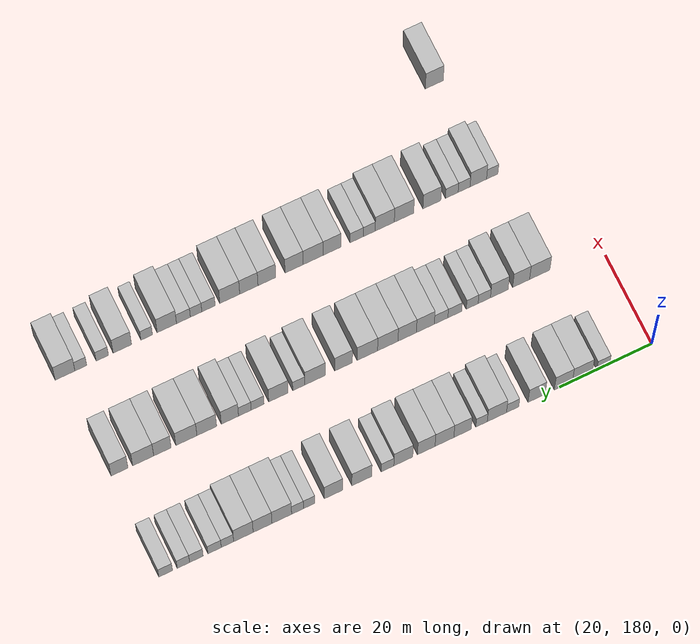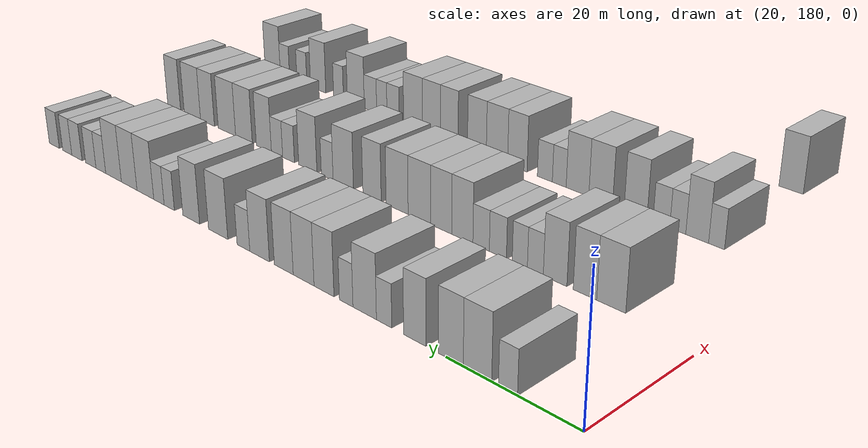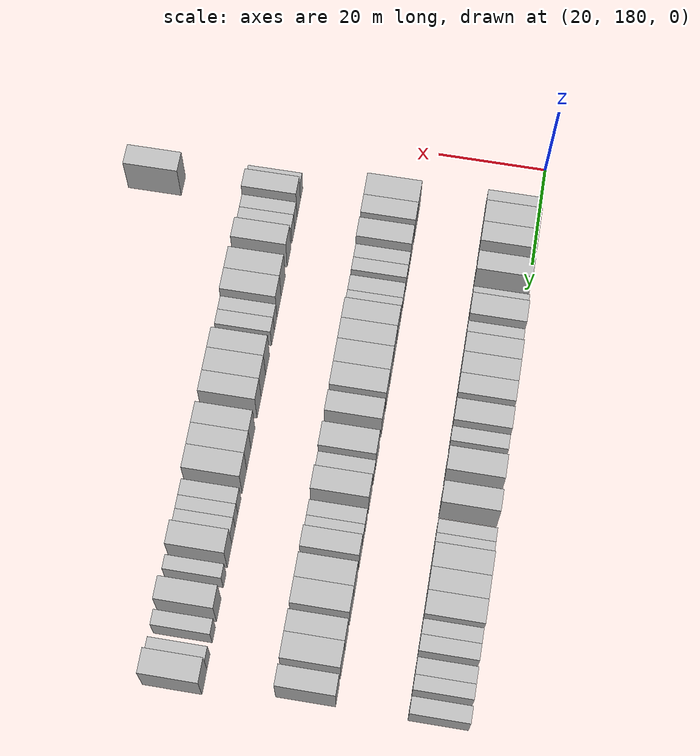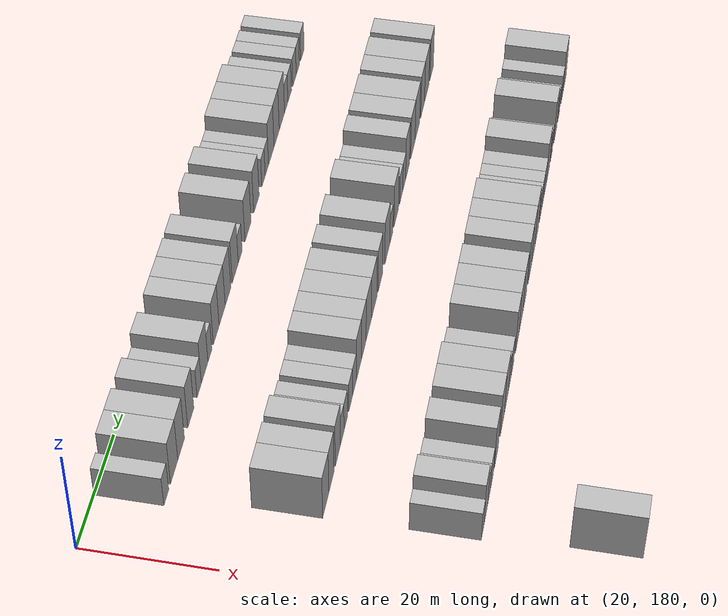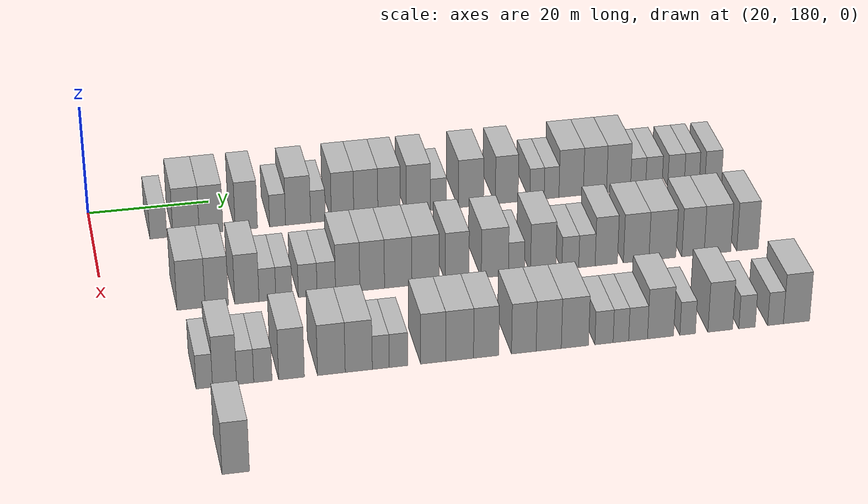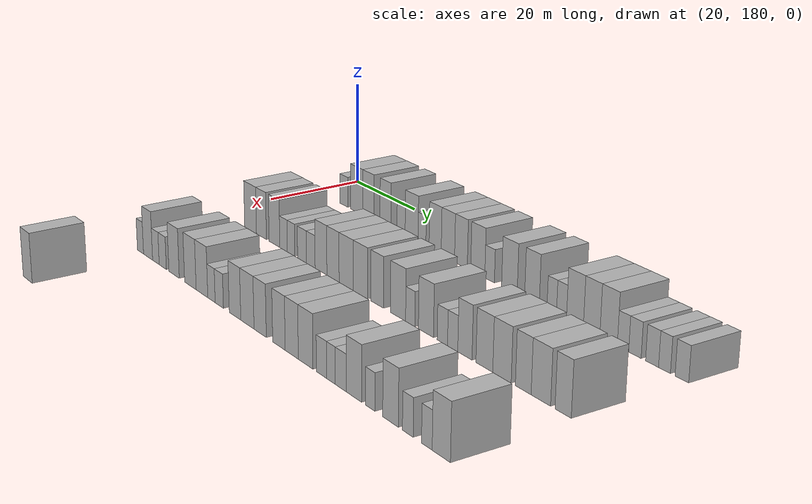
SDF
<sdf version="1.6">
 <world name="default">
  <model name="building_143">
   <static>1</static>
   <pose>25.0000 190.5858 0 0.000000 0.000000 0.000000</pose>
   <link name="link">
    <pose>0 0 3.00 0 0 0</pose>
    <collision name="collision"><geometry><box><size>10.0000 2.7740 6.0000</size></box></geometry></collision>
    <visual name="visual">
     <cast_shadows>0</cast_shadows>
     <geometry><box><size>10.0000 2.7740 6.0000</size></box></geometry>
     <material>
      <script>
       <uri>model://HANNAS_wall/materials/scripts</uri>
       <uri>model://HANNAS_wall/materials/textures</uri>
       <name>vrc/HANNAS_wall</name>
      </script>
     </material>
    </visual>
   </link>
  </model>
  <model name="building_144">
   <static>1</static>
   <pose>25.0000 195.1233 0 0.000000 0.000000 0.000000</pose>
   <link name="link">
    <pose>0 0 4.50 0 0 0</pose>
    <collision name="collision"><geometry><box><size>10.0000 4.3011 9.0000</size></box></geometry></collision>
    <visual name="visual">
     <cast_shadows>0</cast_shadows>
     <geometry><box><size>10.0000 4.3011 9.0000</size></box></geometry>
     <material>
      <script>
       <uri>model://HANNAS_wall/materials/scripts</uri>
       <uri>model://HANNAS_wall/materials/textures</uri>
       <name>vrc/HANNAS_wall</name>
      </script>
     </material>
    </visual>
   </link>
  </model>
  <model name="building_145">
   <static>1</static>
   <pose>25.0000 199.2311 0 0.000000 0.000000 0.000000</pose>
   <link name="link">
    <pose>0 0 4.50 0 0 0</pose>
    <collision name="collision"><geometry><box><size>10.0000 3.9144 9.0000</size></box></geometry></collision>
    <visual name="visual">
     <cast_shadows>0</cast_shadows>
     <geometry><box><size>10.0000 3.9144 9.0000</size></box></geometry>
     <material>
      <script>
       <uri>model://HANNAS_wall/materials/scripts</uri>
       <uri>model://HANNAS_wall/materials/textures</uri>
       <name>vrc/HANNAS_wall</name>
      </script>
     </material>
    </visual>
   </link>
  </model>
  <model name="building_146">
   <static>1</static>
   <pose>25.0000 205.0263 0 0.000000 0.000000 0.000000</pose>
   <link name="link">
    <pose>0 0 4.50 0 0 0</pose>
    <collision name="collision"><geometry><box><size>10.0000 3.6760 9.0000</size></box></geometry></collision>
    <visual name="visual">
     <cast_shadows>0</cast_shadows>
     <geometry><box><size>10.0000 3.6760 9.0000</size></box></geometry>
     <material>
      <script>
       <uri>model://HANNAS_wall/materials/scripts</uri>
       <uri>model://HANNAS_wall/materials/textures</uri>
       <name>vrc/HANNAS_wall</name>
      </script>
     </material>
    </visual>
   </link>
  </model>
  <model name="building_147">
   <static>1</static>
   <pose>25.0000 210.1840 0 0.000000 0.000000 0.000000</pose>
   <link name="link">
    <pose>0 0 3.00 0 0 0</pose>
    <collision name="collision"><geometry><box><size>10.0000 2.6396 6.0000</size></box></geometry></collision>
    <visual name="visual">
     <cast_shadows>0</cast_shadows>
     <geometry><box><size>10.0000 2.6396 6.0000</size></box></geometry>
     <material>
      <script>
       <uri>model://HANNAS_wall/materials/scripts</uri>
       <uri>model://HANNAS_wall/materials/textures</uri>
       <name>vrc/HANNAS_wall</name>
      </script>
     </material>
    </visual>
   </link>
  </model>
  <model name="building_148">
   <static>1</static>
   <pose>25.0000 213.5800 0 0.000000 0.000000 0.000000</pose>
   <link name="link">
    <pose>0 0 4.50 0 0 0</pose>
    <collision name="collision"><geometry><box><size>10.0000 4.1524 9.0000</size></box></geometry></collision>
    <visual name="visual">
     <cast_shadows>0</cast_shadows>
     <geometry><box><size>10.0000 4.1524 9.0000</size></box></geometry>
     <material>
      <script>
       <uri>model://HANNAS_wall/materials/scripts</uri>
       <uri>model://HANNAS_wall/materials/textures</uri>
       <name>vrc/HANNAS_wall</name>
      </script>
     </material>
    </visual>
   </link>
  </model>
  <model name="building_149">
   <static>1</static>
   <pose>25.0000 216.8875 0 0.000000 0.000000 0.000000</pose>
   <link name="link">
    <pose>0 0 3.00 0 0 0</pose>
    <collision name="collision"><geometry><box><size>10.0000 2.4626 6.0000</size></box></geometry></collision>
    <visual name="visual">
     <cast_shadows>0</cast_shadows>
     <geometry><box><size>10.0000 2.4626 6.0000</size></box></geometry>
     <material>
      <script>
       <uri>model://HANNAS_wall/materials/scripts</uri>
       <uri>model://HANNAS_wall/materials/textures</uri>
       <name>vrc/HANNAS_wall</name>
      </script>
     </material>
    </visual>
   </link>
  </model>
  <model name="building_150">
   <static>1</static>
   <pose>25.0000 220.9883 0 0.000000 0.000000 0.000000</pose>
   <link name="link">
    <pose>0 0 4.50 0 0 0</pose>
    <collision name="collision"><geometry><box><size>10.0000 3.7390 9.0000</size></box></geometry></collision>
    <visual name="visual">
     <cast_shadows>0</cast_shadows>
     <geometry><box><size>10.0000 3.7390 9.0000</size></box></geometry>
     <material>
      <script>
       <uri>model://HANNAS_wall/materials/scripts</uri>
       <uri>model://HANNAS_wall/materials/textures</uri>
       <name>vrc/HANNAS_wall</name>
      </script>
     </material>
    </visual>
   </link>
  </model>
  <model name="building_151">
   <static>1</static>
   <pose>25.0000 224.8739 0 0.000000 0.000000 0.000000</pose>
   <link name="link">
    <pose>0 0 4.50 0 0 0</pose>
    <collision name="collision"><geometry><box><size>10.0000 4.0323 9.0000</size></box></geometry></collision>
    <visual name="visual">
     <cast_shadows>0</cast_shadows>
     <geometry><box><size>10.0000 4.0323 9.0000</size></box></geometry>
     <material>
      <script>
       <uri>model://HANNAS_wall/materials/scripts</uri>
       <uri>model://HANNAS_wall/materials/textures</uri>
       <name>vrc/HANNAS_wall</name>
      </script>
     </material>
    </visual>
   </link>
  </model>
  <model name="building_152">
   <static>1</static>
   <pose>25.0000 228.7769 0 0.000000 0.000000 0.000000</pose>
   <link name="link">
    <pose>0 0 4.50 0 0 0</pose>
    <collision name="collision"><geometry><box><size>10.0000 3.7736 9.0000</size></box></geometry></collision>
    <visual name="visual">
     <cast_shadows>0</cast_shadows>
     <geometry><box><size>10.0000 3.7736 9.0000</size></box></geometry>
     <material>
      <script>
       <uri>model://HANNAS_wall/materials/scripts</uri>
       <uri>model://HANNAS_wall/materials/textures</uri>
       <name>vrc/HANNAS_wall</name>
      </script>
     </material>
    </visual>
   </link>
  </model>
  <model name="building_153">
   <static>1</static>
   <pose>25.0000 233.6946 0 0.000000 0.000000 0.000000</pose>
   <link name="link">
    <pose>0 0 4.50 0 0 0</pose>
    <collision name="collision"><geometry><box><size>10.0000 4.0619 9.0000</size></box></geometry></collision>
    <visual name="visual">
     <cast_shadows>0</cast_shadows>
     <geometry><box><size>10.0000 4.0619 9.0000</size></box></geometry>
     <material>
      <script>
       <uri>model://HANNAS_wall/materials/scripts</uri>
       <uri>model://HANNAS_wall/materials/textures</uri>
       <name>vrc/HANNAS_wall</name>
      </script>
     </material>
    </visual>
   </link>
  </model>
  <model name="building_154">
   <static>1</static>
   <pose>25.0000 237.0807 0 0.000000 0.000000 0.000000</pose>
   <link name="link">
    <pose>0 0 3.00 0 0 0</pose>
    <collision name="collision"><geometry><box><size>10.0000 2.7103 6.0000</size></box></geometry></collision>
    <visual name="visual">
     <cast_shadows>0</cast_shadows>
     <geometry><box><size>10.0000 2.7103 6.0000</size></box></geometry>
     <material>
      <script>
       <uri>model://HANNAS_wall/materials/scripts</uri>
       <uri>model://HANNAS_wall/materials/textures</uri>
       <name>vrc/HANNAS_wall</name>
      </script>
     </material>
    </visual>
   </link>
  </model>
  <model name="building_155">
   <static>1</static>
   <pose>25.0000 242.5707 0 0.000000 0.000000 0.000000</pose>
   <link name="link">
    <pose>0 0 4.50 0 0 0</pose>
    <collision name="collision"><geometry><box><size>10.0000 4.2698 9.0000</size></box></geometry></collision>
    <visual name="visual">
     <cast_shadows>0</cast_shadows>
     <geometry><box><size>10.0000 4.2698 9.0000</size></box></geometry>
     <material>
      <script>
       <uri>model://HANNAS_wall/materials/scripts</uri>
       <uri>model://HANNAS_wall/materials/textures</uri>
       <name>vrc/HANNAS_wall</name>
      </script>
     </material>
    </visual>
   </link>
  </model>
  <model name="building_156">
   <static>1</static>
   <pose>25.0000 248.6450 0 0.000000 0.000000 0.000000</pose>
   <link name="link">
    <pose>0 0 4.50 0 0 0</pose>
    <collision name="collision"><geometry><box><size>10.0000 3.8787 9.0000</size></box></geometry></collision>
    <visual name="visual">
     <cast_shadows>0</cast_shadows>
     <geometry><box><size>10.0000 3.8787 9.0000</size></box></geometry>
     <material>
      <script>
       <uri>model://HANNAS_wall/materials/scripts</uri>
       <uri>model://HANNAS_wall/materials/textures</uri>
       <name>vrc/HANNAS_wall</name>
      </script>
     </material>
    </visual>
   </link>
  </model>
  <model name="building_157">
   <static>1</static>
   <pose>25.0000 253.8087 0 0.000000 0.000000 0.000000</pose>
   <link name="link">
    <pose>0 0 3.00 0 0 0</pose>
    <collision name="collision"><geometry><box><size>10.0000 2.4486 6.0000</size></box></geometry></collision>
    <visual name="visual">
     <cast_shadows>0</cast_shadows>
     <geometry><box><size>10.0000 2.4486 6.0000</size></box></geometry>
     <material>
      <script>
       <uri>model://HANNAS_wall/materials/scripts</uri>
       <uri>model://HANNAS_wall/materials/textures</uri>
       <name>vrc/HANNAS_wall</name>
      </script>
     </material>
    </visual>
   </link>
  </model>
  <model name="building_158">
   <static>1</static>
   <pose>25.0000 256.2967 0 0.000000 0.000000 0.000000</pose>
   <link name="link">
    <pose>0 0 3.00 0 0 0</pose>
    <collision name="collision"><geometry><box><size>10.0000 2.5276 6.0000</size></box></geometry></collision>
    <visual name="visual">
     <cast_shadows>0</cast_shadows>
     <geometry><box><size>10.0000 2.5276 6.0000</size></box></geometry>
     <material>
      <script>
       <uri>model://HANNAS_wall/materials/scripts</uri>
       <uri>model://HANNAS_wall/materials/textures</uri>
       <name>vrc/HANNAS_wall</name>
      </script>
     </material>
    </visual>
   </link>
  </model>
  <model name="building_159">
   <static>1</static>
   <pose>25.0000 259.6534 0 0.000000 0.000000 0.000000</pose>
   <link name="link">
    <pose>0 0 4.50 0 0 0</pose>
    <collision name="collision"><geometry><box><size>10.0000 4.1857 9.0000</size></box></geometry></collision>
    <visual name="visual">
     <cast_shadows>0</cast_shadows>
     <geometry><box><size>10.0000 4.1857 9.0000</size></box></geometry>
     <material>
      <script>
       <uri>model://HANNAS_wall/materials/scripts</uri>
       <uri>model://HANNAS_wall/materials/textures</uri>
       <name>vrc/HANNAS_wall</name>
      </script>
     </material>
    </visual>
   </link>
  </model>
  <model name="building_160">
   <static>1</static>
   <pose>25.0000 263.7451 0 0.000000 0.000000 0.000000</pose>
   <link name="link">
    <pose>0 0 4.50 0 0 0</pose>
    <collision name="collision"><geometry><box><size>10.0000 3.9977 9.0000</size></box></geometry></collision>
    <visual name="visual">
     <cast_shadows>0</cast_shadows>
     <geometry><box><size>10.0000 3.9977 9.0000</size></box></geometry>
     <material>
      <script>
       <uri>model://HANNAS_wall/materials/scripts</uri>
       <uri>model://HANNAS_wall/materials/textures</uri>
       <name>vrc/HANNAS_wall</name>
      </script>
     </material>
    </visual>
   </link>
  </model>
  <model name="building_161">
   <static>1</static>
   <pose>25.0000 267.8099 0 0.000000 0.000000 0.000000</pose>
   <link name="link">
    <pose>0 0 4.50 0 0 0</pose>
    <collision name="collision"><geometry><box><size>10.0000 4.1320 9.0000</size></box></geometry></collision>
    <visual name="visual">
     <cast_shadows>0</cast_shadows>
     <geometry><box><size>10.0000 4.1320 9.0000</size></box></geometry>
     <material>
      <script>
       <uri>model://HANNAS_wall/materials/scripts</uri>
       <uri>model://HANNAS_wall/materials/textures</uri>
       <name>vrc/HANNAS_wall</name>
      </script>
     </material>
    </visual>
   </link>
  </model>
  <model name="building_162">
   <static>1</static>
   <pose>25.0000 271.1908 0 0.000000 0.000000 0.000000</pose>
   <link name="link">
    <pose>0 0 3.00 0 0 0</pose>
    <collision name="collision"><geometry><box><size>10.0000 2.6298 6.0000</size></box></geometry></collision>
    <visual name="visual">
     <cast_shadows>0</cast_shadows>
     <geometry><box><size>10.0000 2.6298 6.0000</size></box></geometry>
     <material>
      <script>
       <uri>model://HANNAS_wall/materials/scripts</uri>
       <uri>model://HANNAS_wall/materials/textures</uri>
       <name>vrc/HANNAS_wall</name>
      </script>
     </material>
    </visual>
   </link>
  </model>
  <model name="building_163">
   <static>1</static>
   <pose>25.0000 273.9237 0 0.000000 0.000000 0.000000</pose>
   <link name="link">
    <pose>0 0 3.00 0 0 0</pose>
    <collision name="collision"><geometry><box><size>10.0000 2.8360 6.0000</size></box></geometry></collision>
    <visual name="visual">
     <cast_shadows>0</cast_shadows>
     <geometry><box><size>10.0000 2.8360 6.0000</size></box></geometry>
     <material>
      <script>
       <uri>model://HANNAS_wall/materials/scripts</uri>
       <uri>model://HANNAS_wall/materials/textures</uri>
       <name>vrc/HANNAS_wall</name>
      </script>
     </material>
    </visual>
   </link>
  </model>
  <model name="building_164">
   <static>1</static>
   <pose>25.0000 277.7795 0 0.000000 0.000000 0.000000</pose>
   <link name="link">
    <pose>0 0 3.00 0 0 0</pose>
    <collision name="collision"><geometry><box><size>10.0000 2.8758 6.0000</size></box></geometry></collision>
    <visual name="visual">
     <cast_shadows>0</cast_shadows>
     <geometry><box><size>10.0000 2.8758 6.0000</size></box></geometry>
     <material>
      <script>
       <uri>model://HANNAS_wall/materials/scripts</uri>
       <uri>model://HANNAS_wall/materials/textures</uri>
       <name>vrc/HANNAS_wall</name>
      </script>
     </material>
    </visual>
   </link>
  </model>
  <model name="building_165">
   <static>1</static>
   <pose>25.0000 280.5183 0 0.000000 0.000000 0.000000</pose>
   <link name="link">
    <pose>0 0 3.00 0 0 0</pose>
    <collision name="collision"><geometry><box><size>10.0000 2.6018 6.0000</size></box></geometry></collision>
    <visual name="visual">
     <cast_shadows>0</cast_shadows>
     <geometry><box><size>10.0000 2.6018 6.0000</size></box></geometry>
     <material>
      <script>
       <uri>model://HANNAS_wall/materials/scripts</uri>
       <uri>model://HANNAS_wall/materials/textures</uri>
       <name>vrc/HANNAS_wall</name>
      </script>
     </material>
    </visual>
   </link>
  </model>
  <model name="building_166">
   <static>1</static>
   <pose>25.0000 284.2725 0 0.000000 0.000000 0.000000</pose>
   <link name="link">
    <pose>0 0 3.00 0 0 0</pose>
    <collision name="collision"><geometry><box><size>10.0000 2.9067 6.0000</size></box></geometry></collision>
    <visual name="visual">
     <cast_shadows>0</cast_shadows>
     <geometry><box><size>10.0000 2.9067 6.0000</size></box></geometry>
     <material>
      <script>
       <uri>model://HANNAS_wall/materials/scripts</uri>
       <uri>model://HANNAS_wall/materials/textures</uri>
       <name>vrc/HANNAS_wall</name>
      </script>
     </material>
    </visual>
   </link>
  </model>
  <model name="building_337">
   <static>1</static>
   <pose>47.0000 193.3059 0 0.000000 0.000000 0.000000</pose>
   <link name="link">
    <pose>0 0 4.50 0 0 0</pose>
    <collision name="collision"><geometry><box><size>10.0000 4.4150 9.0000</size></box></geometry></collision>
    <visual name="visual">
     <cast_shadows>0</cast_shadows>
     <geometry><box><size>10.0000 4.4150 9.0000</size></box></geometry>
     <material>
      <script>
       <uri>model://HANNAS_wall/materials/scripts</uri>
       <uri>model://HANNAS_wall/materials/textures</uri>
       <name>vrc/HANNAS_wall</name>
      </script>
     </material>
    </visual>
   </link>
  </model>
  <model name="building_338">
   <static>1</static>
   <pose>47.0000 197.3515 0 0.000000 0.000000 0.000000</pose>
   <link name="link">
    <pose>0 0 4.50 0 0 0</pose>
    <collision name="collision"><geometry><box><size>10.0000 3.6763 9.0000</size></box></geometry></collision>
    <visual name="visual">
     <cast_shadows>0</cast_shadows>
     <geometry><box><size>10.0000 3.6763 9.0000</size></box></geometry>
     <material>
      <script>
       <uri>model://HANNAS_wall/materials/scripts</uri>
       <uri>model://HANNAS_wall/materials/textures</uri>
       <name>vrc/HANNAS_wall</name>
      </script>
     </material>
    </visual>
   </link>
  </model>
  <model name="building_339">
   <static>1</static>
   <pose>47.0000 202.1078 0 0.000000 0.000000 0.000000</pose>
   <link name="link">
    <pose>0 0 4.50 0 0 0</pose>
    <collision name="collision"><geometry><box><size>10.0000 3.8362 9.0000</size></box></geometry></collision>
    <visual name="visual">
     <cast_shadows>0</cast_shadows>
     <geometry><box><size>10.0000 3.8362 9.0000</size></box></geometry>
     <material>
      <script>
       <uri>model://HANNAS_wall/materials/scripts</uri>
       <uri>model://HANNAS_wall/materials/textures</uri>
       <name>vrc/HANNAS_wall</name>
      </script>
     </material>
    </visual>
   </link>
  </model>
  <model name="building_340">
   <static>1</static>
   <pose>47.0000 205.3581 0 0.000000 0.000000 0.000000</pose>
   <link name="link">
    <pose>0 0 3.00 0 0 0</pose>
    <collision name="collision"><geometry><box><size>10.0000 2.6645 6.0000</size></box></geometry></collision>
    <visual name="visual">
     <cast_shadows>0</cast_shadows>
     <geometry><box><size>10.0000 2.6645 6.0000</size></box></geometry>
     <material>
      <script>
       <uri>model://HANNAS_wall/materials/scripts</uri>
       <uri>model://HANNAS_wall/materials/textures</uri>
       <name>vrc/HANNAS_wall</name>
      </script>
     </material>
    </visual>
   </link>
  </model>
  <model name="building_341">
   <static>1</static>
   <pose>47.0000 207.9774 0 0.000000 0.000000 0.000000</pose>
   <link name="link">
    <pose>0 0 3.00 0 0 0</pose>
    <collision name="collision"><geometry><box><size>10.0000 2.5740 6.0000</size></box></geometry></collision>
    <visual name="visual">
     <cast_shadows>0</cast_shadows>
     <geometry><box><size>10.0000 2.5740 6.0000</size></box></geometry>
     <material>
      <script>
       <uri>model://HANNAS_wall/materials/scripts</uri>
       <uri>model://HANNAS_wall/materials/textures</uri>
       <name>vrc/HANNAS_wall</name>
      </script>
     </material>
    </visual>
   </link>
  </model>
  <model name="building_342">
   <static>1</static>
   <pose>47.0000 211.7571 0 0.000000 0.000000 0.000000</pose>
   <link name="link">
    <pose>0 0 3.00 0 0 0</pose>
    <collision name="collision"><geometry><box><size>10.0000 2.9855 6.0000</size></box></geometry></collision>
    <visual name="visual">
     <cast_shadows>0</cast_shadows>
     <geometry><box><size>10.0000 2.9855 6.0000</size></box></geometry>
     <material>
      <script>
       <uri>model://HANNAS_wall/materials/scripts</uri>
       <uri>model://HANNAS_wall/materials/textures</uri>
       <name>vrc/HANNAS_wall</name>
      </script>
     </material>
    </visual>
   </link>
  </model>
  <model name="building_343">
   <static>1</static>
   <pose>47.0000 214.7203 0 0.000000 0.000000 0.000000</pose>
   <link name="link">
    <pose>0 0 3.00 0 0 0</pose>
    <collision name="collision"><geometry><box><size>10.0000 2.9408 6.0000</size></box></geometry></collision>
    <visual name="visual">
     <cast_shadows>0</cast_shadows>
     <geometry><box><size>10.0000 2.9408 6.0000</size></box></geometry>
     <material>
      <script>
       <uri>model://HANNAS_wall/materials/scripts</uri>
       <uri>model://HANNAS_wall/materials/textures</uri>
       <name>vrc/HANNAS_wall</name>
      </script>
     </material>
    </visual>
   </link>
  </model>
  <model name="building_344">
   <static>1</static>
   <pose>47.0000 218.1339 0 0.000000 0.000000 0.000000</pose>
   <link name="link">
    <pose>0 0 4.50 0 0 0</pose>
    <collision name="collision"><geometry><box><size>10.0000 3.8865 9.0000</size></box></geometry></collision>
    <visual name="visual">
     <cast_shadows>0</cast_shadows>
     <geometry><box><size>10.0000 3.8865 9.0000</size></box></geometry>
     <material>
      <script>
       <uri>model://HANNAS_wall/materials/scripts</uri>
       <uri>model://HANNAS_wall/materials/textures</uri>
       <name>vrc/HANNAS_wall</name>
      </script>
     </material>
    </visual>
   </link>
  </model>
  <model name="building_345">
   <static>1</static>
   <pose>47.0000 222.0532 0 0.000000 0.000000 0.000000</pose>
   <link name="link">
    <pose>0 0 4.50 0 0 0</pose>
    <collision name="collision"><geometry><box><size>10.0000 3.9520 9.0000</size></box></geometry></collision>
    <visual name="visual">
     <cast_shadows>0</cast_shadows>
     <geometry><box><size>10.0000 3.9520 9.0000</size></box></geometry>
     <material>
      <script>
       <uri>model://HANNAS_wall/materials/scripts</uri>
       <uri>model://HANNAS_wall/materials/textures</uri>
       <name>vrc/HANNAS_wall</name>
      </script>
     </material>
    </visual>
   </link>
  </model>
  <model name="building_346">
   <static>1</static>
   <pose>47.0000 226.2380 0 0.000000 0.000000 0.000000</pose>
   <link name="link">
    <pose>0 0 4.50 0 0 0</pose>
    <collision name="collision"><geometry><box><size>10.0000 4.4175 9.0000</size></box></geometry></collision>
    <visual name="visual">
     <cast_shadows>0</cast_shadows>
     <geometry><box><size>10.0000 4.4175 9.0000</size></box></geometry>
     <material>
      <script>
       <uri>model://HANNAS_wall/materials/scripts</uri>
       <uri>model://HANNAS_wall/materials/textures</uri>
       <name>vrc/HANNAS_wall</name>
      </script>
     </material>
    </visual>
   </link>
  </model>
  <model name="building_347">
   <static>1</static>
   <pose>47.0000 230.6537 0 0.000000 0.000000 0.000000</pose>
   <link name="link">
    <pose>0 0 4.50 0 0 0</pose>
    <collision name="collision"><geometry><box><size>10.0000 4.4138 9.0000</size></box></geometry></collision>
    <visual name="visual">
     <cast_shadows>0</cast_shadows>
     <geometry><box><size>10.0000 4.4138 9.0000</size></box></geometry>
     <material>
      <script>
       <uri>model://HANNAS_wall/materials/scripts</uri>
       <uri>model://HANNAS_wall/materials/textures</uri>
       <name>vrc/HANNAS_wall</name>
      </script>
     </material>
    </visual>
   </link>
  </model>
  <model name="building_348">
   <static>1</static>
   <pose>47.0000 235.7656 0 0.000000 0.000000 0.000000</pose>
   <link name="link">
    <pose>0 0 4.50 0 0 0</pose>
    <collision name="collision"><geometry><box><size>10.0000 3.8101 9.0000</size></box></geometry></collision>
    <visual name="visual">
     <cast_shadows>0</cast_shadows>
     <geometry><box><size>10.0000 3.8101 9.0000</size></box></geometry>
     <material>
      <script>
       <uri>model://HANNAS_wall/materials/scripts</uri>
       <uri>model://HANNAS_wall/materials/textures</uri>
       <name>vrc/HANNAS_wall</name>
      </script>
     </material>
    </visual>
   </link>
  </model>
  <model name="building_349">
   <static>1</static>
   <pose>47.0000 241.8759 0 0.000000 0.000000 0.000000</pose>
   <link name="link">
    <pose>0 0 4.50 0 0 0</pose>
    <collision name="collision"><geometry><box><size>10.0000 4.4104 9.0000</size></box></geometry></collision>
    <visual name="visual">
     <cast_shadows>0</cast_shadows>
     <geometry><box><size>10.0000 4.4104 9.0000</size></box></geometry>
     <material>
      <script>
       <uri>model://HANNAS_wall/materials/scripts</uri>
       <uri>model://HANNAS_wall/materials/textures</uri>
       <name>vrc/HANNAS_wall</name>
      </script>
     </material>
    </visual>
   </link>
  </model>
  <model name="building_350">
   <static>1</static>
   <pose>47.0000 245.3846 0 0.000000 0.000000 0.000000</pose>
   <link name="link">
    <pose>0 0 3.00 0 0 0</pose>
    <collision name="collision"><geometry><box><size>10.0000 2.6071 6.0000</size></box></geometry></collision>
    <visual name="visual">
     <cast_shadows>0</cast_shadows>
     <geometry><box><size>10.0000 2.6071 6.0000</size></box></geometry>
     <material>
      <script>
       <uri>model://HANNAS_wall/materials/scripts</uri>
       <uri>model://HANNAS_wall/materials/textures</uri>
       <name>vrc/HANNAS_wall</name>
      </script>
     </material>
    </visual>
   </link>
  </model>
  <model name="building_351">
   <static>1</static>
   <pose>47.0000 249.7638 0 0.000000 0.000000 0.000000</pose>
   <link name="link">
    <pose>0 0 4.50 0 0 0</pose>
    <collision name="collision"><geometry><box><size>10.0000 4.1513 9.0000</size></box></geometry></collision>
    <visual name="visual">
     <cast_shadows>0</cast_shadows>
     <geometry><box><size>10.0000 4.1513 9.0000</size></box></geometry>
     <material>
      <script>
       <uri>model://HANNAS_wall/materials/scripts</uri>
       <uri>model://HANNAS_wall/materials/textures</uri>
       <name>vrc/HANNAS_wall</name>
      </script>
     </material>
    </visual>
   </link>
  </model>
  <model name="building_352">
   <static>1</static>
   <pose>47.0000 254.2254 0 0.000000 0.000000 0.000000</pose>
   <link name="link">
    <pose>0 0 3.00 0 0 0</pose>
    <collision name="collision"><geometry><box><size>10.0000 2.7718 6.0000</size></box></geometry></collision>
    <visual name="visual">
     <cast_shadows>0</cast_shadows>
     <geometry><box><size>10.0000 2.7718 6.0000</size></box></geometry>
     <material>
      <script>
       <uri>model://HANNAS_wall/materials/scripts</uri>
       <uri>model://HANNAS_wall/materials/textures</uri>
       <name>vrc/HANNAS_wall</name>
      </script>
     </material>
    </visual>
   </link>
  </model>
  <model name="building_353">
   <static>1</static>
   <pose>47.0000 256.9596 0 0.000000 0.000000 0.000000</pose>
   <link name="link">
    <pose>0 0 3.00 0 0 0</pose>
    <collision name="collision"><geometry><box><size>10.0000 2.6966 6.0000</size></box></geometry></collision>
    <visual name="visual">
     <cast_shadows>0</cast_shadows>
     <geometry><box><size>10.0000 2.6966 6.0000</size></box></geometry>
     <material>
      <script>
       <uri>model://HANNAS_wall/materials/scripts</uri>
       <uri>model://HANNAS_wall/materials/textures</uri>
       <name>vrc/HANNAS_wall</name>
      </script>
     </material>
    </visual>
   </link>
  </model>
  <model name="building_354">
   <static>1</static>
   <pose>47.0000 260.1494 0 0.000000 0.000000 0.000000</pose>
   <link name="link">
    <pose>0 0 4.50 0 0 0</pose>
    <collision name="collision"><geometry><box><size>10.0000 3.6830 9.0000</size></box></geometry></collision>
    <visual name="visual">
     <cast_shadows>0</cast_shadows>
     <geometry><box><size>10.0000 3.6830 9.0000</size></box></geometry>
     <material>
      <script>
       <uri>model://HANNAS_wall/materials/scripts</uri>
       <uri>model://HANNAS_wall/materials/textures</uri>
       <name>vrc/HANNAS_wall</name>
      </script>
     </material>
    </visual>
   </link>
  </model>
  <model name="building_355">
   <static>1</static>
   <pose>47.0000 265.0983 0 0.000000 0.000000 0.000000</pose>
   <link name="link">
    <pose>0 0 4.50 0 0 0</pose>
    <collision name="collision"><geometry><box><size>10.0000 4.2149 9.0000</size></box></geometry></collision>
    <visual name="visual">
     <cast_shadows>0</cast_shadows>
     <geometry><box><size>10.0000 4.2149 9.0000</size></box></geometry>
     <material>
      <script>
       <uri>model://HANNAS_wall/materials/scripts</uri>
       <uri>model://HANNAS_wall/materials/textures</uri>
       <name>vrc/HANNAS_wall</name>
      </script>
     </material>
    </visual>
   </link>
  </model>
  <model name="building_356">
   <static>1</static>
   <pose>47.0000 269.4494 0 0.000000 0.000000 0.000000</pose>
   <link name="link">
    <pose>0 0 4.50 0 0 0</pose>
    <collision name="collision"><geometry><box><size>10.0000 4.4873 9.0000</size></box></geometry></collision>
    <visual name="visual">
     <cast_shadows>0</cast_shadows>
     <geometry><box><size>10.0000 4.4873 9.0000</size></box></geometry>
     <material>
      <script>
       <uri>model://HANNAS_wall/materials/scripts</uri>
       <uri>model://HANNAS_wall/materials/textures</uri>
       <name>vrc/HANNAS_wall</name>
      </script>
     </material>
    </visual>
   </link>
  </model>
  <model name="building_357">
   <static>1</static>
   <pose>47.0000 274.5521 0 0.000000 0.000000 0.000000</pose>
   <link name="link">
    <pose>0 0 4.50 0 0 0</pose>
    <collision name="collision"><geometry><box><size>10.0000 3.7181 9.0000</size></box></geometry></collision>
    <visual name="visual">
     <cast_shadows>0</cast_shadows>
     <geometry><box><size>10.0000 3.7181 9.0000</size></box></geometry>
     <material>
      <script>
       <uri>model://HANNAS_wall/materials/scripts</uri>
       <uri>model://HANNAS_wall/materials/textures</uri>
       <name>vrc/HANNAS_wall</name>
      </script>
     </material>
    </visual>
   </link>
  </model>
  <model name="building_358">
   <static>1</static>
   <pose>47.0000 278.6449 0 0.000000 0.000000 0.000000</pose>
   <link name="link">
    <pose>0 0 4.50 0 0 0</pose>
    <collision name="collision"><geometry><box><size>10.0000 4.4676 9.0000</size></box></geometry></collision>
    <visual name="visual">
     <cast_shadows>0</cast_shadows>
     <geometry><box><size>10.0000 4.4676 9.0000</size></box></geometry>
     <material>
      <script>
       <uri>model://HANNAS_wall/materials/scripts</uri>
       <uri>model://HANNAS_wall/materials/textures</uri>
       <name>vrc/HANNAS_wall</name>
      </script>
     </material>
    </visual>
   </link>
  </model>
  <model name="building_359">
   <static>1</static>
   <pose>47.0000 283.6819 0 0.000000 0.000000 0.000000</pose>
   <link name="link">
    <pose>0 0 4.50 0 0 0</pose>
    <collision name="collision"><geometry><box><size>10.0000 3.6064 9.0000</size></box></geometry></collision>
    <visual name="visual">
     <cast_shadows>0</cast_shadows>
     <geometry><box><size>10.0000 3.6064 9.0000</size></box></geometry>
     <material>
      <script>
       <uri>model://HANNAS_wall/materials/scripts</uri>
       <uri>model://HANNAS_wall/materials/textures</uri>
       <name>vrc/HANNAS_wall</name>
      </script>
     </material>
    </visual>
   </link>
  </model>
  <model name="building_530">
   <static>1</static>
   <pose>69.0000 192.6755 0 0.000000 0.000000 0.000000</pose>
   <link name="link">
    <pose>0 0 3.00 0 0 0</pose>
    <collision name="collision"><geometry><box><size>10.0000 2.4789 6.0000</size></box></geometry></collision>
    <visual name="visual">
     <cast_shadows>0</cast_shadows>
     <geometry><box><size>10.0000 2.4789 6.0000</size></box></geometry>
     <material>
      <script>
       <uri>model://HANNAS_wall/materials/scripts</uri>
       <uri>model://HANNAS_wall/materials/textures</uri>
       <name>vrc/HANNAS_wall</name>
      </script>
     </material>
    </visual>
   </link>
  </model>
  <model name="building_531">
   <static>1</static>
   <pose>69.0000 195.7253 0 0.000000 0.000000 0.000000</pose>
   <link name="link">
    <pose>0 0 4.50 0 0 0</pose>
    <collision name="collision"><geometry><box><size>10.0000 3.6208 9.0000</size></box></geometry></collision>
    <visual name="visual">
     <cast_shadows>0</cast_shadows>
     <geometry><box><size>10.0000 3.6208 9.0000</size></box></geometry>
     <material>
      <script>
       <uri>model://HANNAS_wall/materials/scripts</uri>
       <uri>model://HANNAS_wall/materials/textures</uri>
       <name>vrc/HANNAS_wall</name>
      </script>
     </material>
    </visual>
   </link>
  </model>
  <model name="building_532">
   <static>1</static>
   <pose>69.0000 198.8332 0 0.000000 0.000000 0.000000</pose>
   <link name="link">
    <pose>0 0 3.00 0 0 0</pose>
    <collision name="collision"><geometry><box><size>10.0000 2.5949 6.0000</size></box></geometry></collision>
    <visual name="visual">
     <cast_shadows>0</cast_shadows>
     <geometry><box><size>10.0000 2.5949 6.0000</size></box></geometry>
     <material>
      <script>
       <uri>model://HANNAS_wall/materials/scripts</uri>
       <uri>model://HANNAS_wall/materials/textures</uri>
       <name>vrc/HANNAS_wall</name>
      </script>
     </material>
    </visual>
   </link>
  </model>
  <model name="building_533">
   <static>1</static>
   <pose>69.0000 201.5175 0 0.000000 0.000000 0.000000</pose>
   <link name="link">
    <pose>0 0 3.00 0 0 0</pose>
    <collision name="collision"><geometry><box><size>10.0000 2.7739 6.0000</size></box></geometry></collision>
    <visual name="visual">
     <cast_shadows>0</cast_shadows>
     <geometry><box><size>10.0000 2.7739 6.0000</size></box></geometry>
     <material>
      <script>
       <uri>model://HANNAS_wall/materials/scripts</uri>
       <uri>model://HANNAS_wall/materials/textures</uri>
       <name>vrc/HANNAS_wall</name>
      </script>
     </material>
    </visual>
   </link>
  </model>
  <model name="building_534">
   <static>1</static>
   <pose>69.0000 205.8608 0 0.000000 0.000000 0.000000</pose>
   <link name="link">
    <pose>0 0 4.50 0 0 0</pose>
    <collision name="collision"><geometry><box><size>10.0000 3.9127 9.0000</size></box></geometry></collision>
    <visual name="visual">
     <cast_shadows>0</cast_shadows>
     <geometry><box><size>10.0000 3.9127 9.0000</size></box></geometry>
     <material>
      <script>
       <uri>model://HANNAS_wall/materials/scripts</uri>
       <uri>model://HANNAS_wall/materials/textures</uri>
       <name>vrc/HANNAS_wall</name>
      </script>
     </material>
    </visual>
   </link>
  </model>
  <model name="building_535">
   <static>1</static>
   <pose>69.0000 211.9300 0 0.000000 0.000000 0.000000</pose>
   <link name="link">
    <pose>0 0 4.50 0 0 0</pose>
    <collision name="collision"><geometry><box><size>10.0000 4.2257 9.0000</size></box></geometry></collision>
    <visual name="visual">
     <cast_shadows>0</cast_shadows>
     <geometry><box><size>10.0000 4.2257 9.0000</size></box></geometry>
     <material>
      <script>
       <uri>model://HANNAS_wall/materials/scripts</uri>
       <uri>model://HANNAS_wall/materials/textures</uri>
       <name>vrc/HANNAS_wall</name>
      </script>
     </material>
    </visual>
   </link>
  </model>
  <model name="building_536">
   <static>1</static>
   <pose>69.0000 216.1169 0 0.000000 0.000000 0.000000</pose>
   <link name="link">
    <pose>0 0 4.50 0 0 0</pose>
    <collision name="collision"><geometry><box><size>10.0000 4.1482 9.0000</size></box></geometry></collision>
    <visual name="visual">
     <cast_shadows>0</cast_shadows>
     <geometry><box><size>10.0000 4.1482 9.0000</size></box></geometry>
     <material>
      <script>
       <uri>model://HANNAS_wall/materials/scripts</uri>
       <uri>model://HANNAS_wall/materials/textures</uri>
       <name>vrc/HANNAS_wall</name>
      </script>
     </material>
    </visual>
   </link>
  </model>
  <model name="building_537">
   <static>1</static>
   <pose>69.0000 219.4867 0 0.000000 0.000000 0.000000</pose>
   <link name="link">
    <pose>0 0 3.00 0 0 0</pose>
    <collision name="collision"><geometry><box><size>10.0000 2.5914 6.0000</size></box></geometry></collision>
    <visual name="visual">
     <cast_shadows>0</cast_shadows>
     <geometry><box><size>10.0000 2.5914 6.0000</size></box></geometry>
     <material>
      <script>
       <uri>model://HANNAS_wall/materials/scripts</uri>
       <uri>model://HANNAS_wall/materials/textures</uri>
       <name>vrc/HANNAS_wall</name>
      </script>
     </material>
    </visual>
   </link>
  </model>
  <model name="building_538">
   <static>1</static>
   <pose>69.0000 222.2106 0 0.000000 0.000000 0.000000</pose>
   <link name="link">
    <pose>0 0 3.00 0 0 0</pose>
    <collision name="collision"><geometry><box><size>10.0000 2.8562 6.0000</size></box></geometry></collision>
    <visual name="visual">
     <cast_shadows>0</cast_shadows>
     <geometry><box><size>10.0000 2.8562 6.0000</size></box></geometry>
     <material>
      <script>
       <uri>model://HANNAS_wall/materials/scripts</uri>
       <uri>model://HANNAS_wall/materials/textures</uri>
       <name>vrc/HANNAS_wall</name>
      </script>
     </material>
    </visual>
   </link>
  </model>
  <model name="building_539">
   <static>1</static>
   <pose>69.0000 227.5652 0 0.000000 0.000000 0.000000</pose>
   <link name="link">
    <pose>0 0 4.50 0 0 0</pose>
    <collision name="collision"><geometry><box><size>10.0000 3.8531 9.0000</size></box></geometry></collision>
    <visual name="visual">
     <cast_shadows>0</cast_shadows>
     <geometry><box><size>10.0000 3.8531 9.0000</size></box></geometry>
     <material>
      <script>
       <uri>model://HANNAS_wall/materials/scripts</uri>
       <uri>model://HANNAS_wall/materials/textures</uri>
       <name>vrc/HANNAS_wall</name>
      </script>
     </material>
    </visual>
   </link>
  </model>
  <model name="building_540">
   <static>1</static>
   <pose>69.0000 231.6552 0 0.000000 0.000000 0.000000</pose>
   <link name="link">
    <pose>0 0 4.50 0 0 0</pose>
    <collision name="collision"><geometry><box><size>10.0000 4.3268 9.0000</size></box></geometry></collision>
    <visual name="visual">
     <cast_shadows>0</cast_shadows>
     <geometry><box><size>10.0000 4.3268 9.0000</size></box></geometry>
     <material>
      <script>
       <uri>model://HANNAS_wall/materials/scripts</uri>
       <uri>model://HANNAS_wall/materials/textures</uri>
       <name>vrc/HANNAS_wall</name>
      </script>
     </material>
    </visual>
   </link>
  </model>
  <model name="building_541">
   <static>1</static>
   <pose>69.0000 235.7743 0 0.000000 0.000000 0.000000</pose>
   <link name="link">
    <pose>0 0 4.50 0 0 0</pose>
    <collision name="collision"><geometry><box><size>10.0000 3.9115 9.0000</size></box></geometry></collision>
    <visual name="visual">
     <cast_shadows>0</cast_shadows>
     <geometry><box><size>10.0000 3.9115 9.0000</size></box></geometry>
     <material>
      <script>
       <uri>model://HANNAS_wall/materials/scripts</uri>
       <uri>model://HANNAS_wall/materials/textures</uri>
       <name>vrc/HANNAS_wall</name>
      </script>
     </material>
    </visual>
   </link>
  </model>
  <model name="building_542">
   <static>1</static>
   <pose>69.0000 241.6537 0 0.000000 0.000000 0.000000</pose>
   <link name="link">
    <pose>0 0 4.50 0 0 0</pose>
    <collision name="collision"><geometry><box><size>10.0000 3.8472 9.0000</size></box></geometry></collision>
    <visual name="visual">
     <cast_shadows>0</cast_shadows>
     <geometry><box><size>10.0000 3.8472 9.0000</size></box></geometry>
     <material>
      <script>
       <uri>model://HANNAS_wall/materials/scripts</uri>
       <uri>model://HANNAS_wall/materials/textures</uri>
       <name>vrc/HANNAS_wall</name>
      </script>
     </material>
    </visual>
   </link>
  </model>
  <model name="building_543">
   <static>1</static>
   <pose>69.0000 245.5485 0 0.000000 0.000000 0.000000</pose>
   <link name="link">
    <pose>0 0 4.50 0 0 0</pose>
    <collision name="collision"><geometry><box><size>10.0000 3.9425 9.0000</size></box></geometry></collision>
    <visual name="visual">
     <cast_shadows>0</cast_shadows>
     <geometry><box><size>10.0000 3.9425 9.0000</size></box></geometry>
     <material>
      <script>
       <uri>model://HANNAS_wall/materials/scripts</uri>
       <uri>model://HANNAS_wall/materials/textures</uri>
       <name>vrc/HANNAS_wall</name>
      </script>
     </material>
    </visual>
   </link>
  </model>
  <model name="building_544">
   <static>1</static>
   <pose>69.0000 249.6635 0 0.000000 0.000000 0.000000</pose>
   <link name="link">
    <pose>0 0 4.50 0 0 0</pose>
    <collision name="collision"><geometry><box><size>10.0000 4.2875 9.0000</size></box></geometry></collision>
    <visual name="visual">
     <cast_shadows>0</cast_shadows>
     <geometry><box><size>10.0000 4.2875 9.0000</size></box></geometry>
     <material>
      <script>
       <uri>model://HANNAS_wall/materials/scripts</uri>
       <uri>model://HANNAS_wall/materials/textures</uri>
       <name>vrc/HANNAS_wall</name>
      </script>
     </material>
    </visual>
   </link>
  </model>
  <model name="building_545">
   <static>1</static>
   <pose>69.0000 254.2448 0 0.000000 0.000000 0.000000</pose>
   <link name="link">
    <pose>0 0 3.00 0 0 0</pose>
    <collision name="collision"><geometry><box><size>10.0000 2.8751 6.0000</size></box></geometry></collision>
    <visual name="visual">
     <cast_shadows>0</cast_shadows>
     <geometry><box><size>10.0000 2.8751 6.0000</size></box></geometry>
     <material>
      <script>
       <uri>model://HANNAS_wall/materials/scripts</uri>
       <uri>model://HANNAS_wall/materials/textures</uri>
       <name>vrc/HANNAS_wall</name>
      </script>
     </material>
    </visual>
   </link>
  </model>
  <model name="building_546">
   <static>1</static>
   <pose>69.0000 256.9100 0 0.000000 0.000000 0.000000</pose>
   <link name="link">
    <pose>0 0 3.00 0 0 0</pose>
    <collision name="collision"><geometry><box><size>10.0000 2.4553 6.0000</size></box></geometry></collision>
    <visual name="visual">
     <cast_shadows>0</cast_shadows>
     <geometry><box><size>10.0000 2.4553 6.0000</size></box></geometry>
     <material>
      <script>
       <uri>model://HANNAS_wall/materials/scripts</uri>
       <uri>model://HANNAS_wall/materials/textures</uri>
       <name>vrc/HANNAS_wall</name>
      </script>
     </material>
    </visual>
   </link>
  </model>
  <model name="building_547">
   <static>1</static>
   <pose>69.0000 259.6336 0 0.000000 0.000000 0.000000</pose>
   <link name="link">
    <pose>0 0 3.00 0 0 0</pose>
    <collision name="collision"><geometry><box><size>10.0000 2.9918 6.0000</size></box></geometry></collision>
    <visual name="visual">
     <cast_shadows>0</cast_shadows>
     <geometry><box><size>10.0000 2.9918 6.0000</size></box></geometry>
     <material>
      <script>
       <uri>model://HANNAS_wall/materials/scripts</uri>
       <uri>model://HANNAS_wall/materials/textures</uri>
       <name>vrc/HANNAS_wall</name>
      </script>
     </material>
    </visual>
   </link>
  </model>
  <model name="building_548">
   <static>1</static>
   <pose>69.0000 263.2005 0 0.000000 0.000000 0.000000</pose>
   <link name="link">
    <pose>0 0 4.50 0 0 0</pose>
    <collision name="collision"><geometry><box><size>10.0000 4.1420 9.0000</size></box></geometry></collision>
    <visual name="visual">
     <cast_shadows>0</cast_shadows>
     <geometry><box><size>10.0000 4.1420 9.0000</size></box></geometry>
     <material>
      <script>
       <uri>model://HANNAS_wall/materials/scripts</uri>
       <uri>model://HANNAS_wall/materials/textures</uri>
       <name>vrc/HANNAS_wall</name>
      </script>
     </material>
    </visual>
   </link>
  </model>
  <model name="building_549">
   <static>1</static>
   <pose>69.0000 267.5133 0 0.000000 0.000000 0.000000</pose>
   <link name="link">
    <pose>0 0 3.00 0 0 0</pose>
    <collision name="collision"><geometry><box><size>10.0000 2.4837 6.0000</size></box></geometry></collision>
    <visual name="visual">
     <cast_shadows>0</cast_shadows>
     <geometry><box><size>10.0000 2.4837 6.0000</size></box></geometry>
     <material>
      <script>
       <uri>model://HANNAS_wall/materials/scripts</uri>
       <uri>model://HANNAS_wall/materials/textures</uri>
       <name>vrc/HANNAS_wall</name>
      </script>
     </material>
    </visual>
   </link>
  </model>
  <model name="building_550">
   <static>1</static>
   <pose>69.0000 272.7299 0 0.000000 0.000000 0.000000</pose>
   <link name="link">
    <pose>0 0 4.50 0 0 0</pose>
    <collision name="collision"><geometry><box><size>10.0000 3.9496 9.0000</size></box></geometry></collision>
    <visual name="visual">
     <cast_shadows>0</cast_shadows>
     <geometry><box><size>10.0000 3.9496 9.0000</size></box></geometry>
     <material>
      <script>
       <uri>model://HANNAS_wall/materials/scripts</uri>
       <uri>model://HANNAS_wall/materials/textures</uri>
       <name>vrc/HANNAS_wall</name>
      </script>
     </material>
    </visual>
   </link>
  </model>
  <model name="building_551">
   <static>1</static>
   <pose>69.0000 277.0231 0 0.000000 0.000000 0.000000</pose>
   <link name="link">
    <pose>0 0 3.00 0 0 0</pose>
    <collision name="collision"><geometry><box><size>10.0000 2.6368 6.0000</size></box></geometry></collision>
    <visual name="visual">
     <cast_shadows>0</cast_shadows>
     <geometry><box><size>10.0000 2.6368 6.0000</size></box></geometry>
     <material>
      <script>
       <uri>model://HANNAS_wall/materials/scripts</uri>
       <uri>model://HANNAS_wall/materials/textures</uri>
       <name>vrc/HANNAS_wall</name>
      </script>
     </material>
    </visual>
   </link>
  </model>
  <model name="building_552">
   <static>1</static>
   <pose>69.0000 281.6076 0 0.000000 0.000000 0.000000</pose>
   <link name="link">
    <pose>0 0 3.00 0 0 0</pose>
    <collision name="collision"><geometry><box><size>10.0000 2.5321 6.0000</size></box></geometry></collision>
    <visual name="visual">
     <cast_shadows>0</cast_shadows>
     <geometry><box><size>10.0000 2.5321 6.0000</size></box></geometry>
     <material>
      <script>
       <uri>model://HANNAS_wall/materials/scripts</uri>
       <uri>model://HANNAS_wall/materials/textures</uri>
       <name>vrc/HANNAS_wall</name>
      </script>
     </material>
    </visual>
   </link>
  </model>
  <model name="building_553">
   <static>1</static>
   <pose>69.0000 284.9880 0 0.000000 0.000000 0.000000</pose>
   <link name="link">
    <pose>0 0 4.50 0 0 0</pose>
    <collision name="collision"><geometry><box><size>10.0000 4.2288 9.0000</size></box></geometry></collision>
    <visual name="visual">
     <cast_shadows>0</cast_shadows>
     <geometry><box><size>10.0000 4.2288 9.0000</size></box></geometry>
     <material>
      <script>
       <uri>model://HANNAS_wall/materials/scripts</uri>
       <uri>model://HANNAS_wall/materials/textures</uri>
       <name>vrc/HANNAS_wall</name>
      </script>
     </material>
    </visual>
   </link>
  </model>
  <model name="building_724">
   <static>1</static>
   <pose>91.0000 194.4883 0 0.000000 0.000000 0.000000</pose>
   <link name="link">
    <pose>0 0 4.50 0 0 0</pose>
    <collision name="collision"><geometry><box><size>10.0000 3.9471 9.0000</size></box></geometry></collision>
    <visual name="visual">
     <cast_shadows>0</cast_shadows>
     <geometry><box><size>10.0000 3.9471 9.0000</size></box></geometry>
     <material>
      <script>
       <uri>model://HANNAS_wall/materials/scripts</uri>
       <uri>model://HANNAS_wall/materials/textures</uri>
       <name>vrc/HANNAS_wall</name>
      </script>
     </material>
    </visual>
   </link>
  </model>
 </world>
</sdf>
